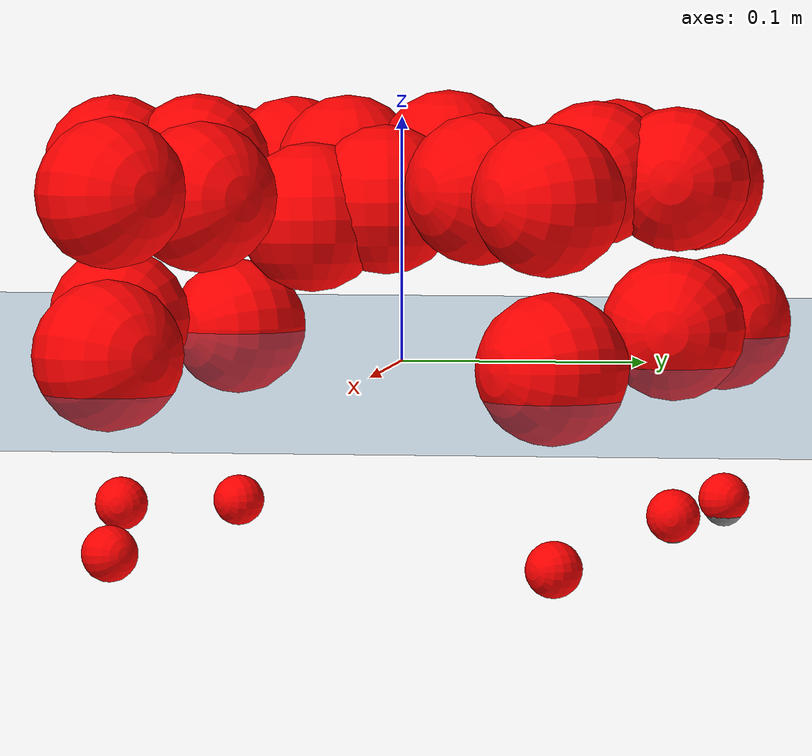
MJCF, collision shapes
<mujoco model="Golem">
  <compiler angle="radian" assetdir="assets" balanceinertia="true" inertiafromgeom="false"/>

  <option timestep="0.005" density="1.2" viscosity="2e-05"/>

  <size nkey="1"/>

  <visual>
    <quality shadowsize="8192"/>
    <map shadowclip="0.5"/>
  </visual>

  <default>
    <default class="/">
      <joint armature="0.01" damping="0.01" frictionloss="0.01"/>
      <geom contype="0" conaffinity="0" group="1" solref="-1000 -80"/>
      <site size="0.01 0.005 0.005" group="5"/>
      <general forcelimited="true" biastype="affine" gainprm="25" biasprm="0 -25 -0.5"/>
      <default class="visual">
        <geom type="mesh" group="2"/>
      </default>
      <default class="collision">
        <geom group="3"/>
      </default>
      <default class="foot">
        <geom size="0.01 0 0" condim="6" group="4" priority="1" solimp="0.015 1 0.01"/>
      </default>
      <default class="reward_collision_sphere">
        <geom group="5" rgba="1 0 0 1"/>
      </default>
    </default>
  </default>

  <asset>
    <texture type="skybox" colorspace="auto" name="//unnamed_texture_0" builtin="gradient" rgb1="0.95 0.95 0.95" rgb2="0.95 0.95 0.95" width="100" height="600"/>
    <texture type="2d" colorspace="auto" name="texplane" builtin="checker" rgb1="0.345 0.575 0.748" rgb2="0.345 0.575 0.748" markrgb="1 1 1" width="512" height="512"/>
    <material name="MatPlane" class="/" texture="texplane" texuniform="true" texrepeat="2 2" specular="0.9"/>
    <mesh name="body" class="/" file="body.stl" scale="0.001 0.001 0.001"/>
    <mesh name="coxa" class="/" file="coxa.stl" scale="0.001 0.001 0.001"/>
    <mesh name="femur" class="/" file="femur.stl" scale="0.001 0.001 0.001"/>
    <mesh name="tibia" class="/" file="tibia.stl" scale="0.001 0.001 0.001"/>
    <mesh name="tarsus" class="/" file="tarsus.stl" scale="0.001 0.001 0.001"/>
  </asset>

  <worldbody>
    <geom name="floor" class="/" size="100 100 0.125" type="plane" group="0" material="MatPlane"/>
    <light name="toplight_shadow" class="/" pos="0 0 5" dir="0.0990148 0.0990148 -0.990148" type="directional" ambient="0.04 0.04 0.04" diffuse="0.55 0.55 0.55" specular="0.12 0.12 0.12"/>
    <light name="toplight_fill" class="/" pos="0 0 5" dir="0.0990148 0.0990148 -0.990148" type="directional" castshadow="false" ambient="0.04 0.04 0.04" diffuse="0.3 0.3 0.3" specular="0.08 0.08 0.08"/>
    <body name="trunk" pos="-0.000384986 0.000454457 0.0013964" quat="0.999992 0.00330038 0.00232652 -0.000666711">
      <inertial pos="0.00112461 -0.00202037 -0.00467884" quat="0.999998 0.00113798 0.000961944 0.00151793" mass="1.34541" diaginertia="0.00186785 8.12851e-05 0.0180191"/>
      <joint name="//unnamed_joint_0" type="free"/>
      <geom name="//unnamed_geom_1" class="/" pos="0 0 0.0718574" quat="1 0 0 0" type="mesh" rgba="0.9 0.9 0.9 1" mesh="body"/>
      <site name="imu" class="/" pos="0.0560391 0.0112535 0.114774" size="0.00738247"/>
      <camera name="track" class="/" pos="0 -0.758217 0" quat="0.707107 0.707107 0 0" mode="trackcom"/>
      <camera name="ego_camera" class="/" pos="0.0926719 0 0.112277" quat="-0.5 -0.5 0.5 0.5"/>
      <body name="coxa_RR" pos="-0.122146 -0.0392995 0.0655133" quat="0.385153 -0.00269763 -0.00127315 -0.922848">
        <inertial pos="0.000893943 -0.00156439 -0.00445803" quat="0.999884 0.0064328 -0.0137529 0.00124822" mass="0.0740142" diaginertia="0.00173986 7.4688e-05 0.0164214"/>
        <joint name="coxa_joint_RR" class="/" pos="0 0 0" axis="-0.0111824 0.00688154 -0.999914" range="-3.04639 3.27022" armature="0.0071896" damping="0.00498405" frictionloss="0.00650163"/>
        <geom name="//unnamed_geom_2" class="/" type="mesh" rgba="0.2 0.2 0.2 1" mesh="coxa"/>
        <geom name="//unnamed_geom_3" class="reward_collision_sphere" size="0.0295299" pos="-0.0213858 0 0"/>
        <body name="femur_RR" pos="0.0394287 -0.000641527 0.00629087" quat="0.499256 -0.500437 0.500051 0.500255">
          <inertial pos="0.000246387 -0.000542424 -0.0013622" quat="0.999941 -0.00381913 -1.41312e-05 0.0101935" mass="0.0821546" diaginertia="0.00180886 7.6396e-05 0.01763"/>
          <joint name="femur_joint_RR" class="/" pos="0 0 0" axis="0.00336485 -0.00470562 -0.999983" stiffness="0.00122662" range="-3.26913 3.17266" armature="0.0095844" damping="0.0144956" frictionloss="0.00712081"/>
          <geom name="//unnamed_geom_4" class="/" type="mesh" rgba="0.9 0.9 0.9 1" mesh="femur"/>
          <geom name="//unnamed_geom_5" class="reward_collision_sphere" size="0.0295299"/>
          <body name="tibia_RR" pos="0.00497395 -0.0488339 -0.00200145" quat="0.00110665 0.999998 7.0078e-06 0.00162446">
            <inertial pos="-0.00495302 -0.00199763 -0.000430246" quat="0.999939 -0.00484584 -0.00767088 0.0062863" mass="0.0758244" diaginertia="0.00183711 7.89326e-05 0.0191355"/>
            <joint name="tibia_joint_RR" class="/" pos="0 0 0" axis="-0.0338944 -0.0052684 0.999412" range="-3.27752 3.17449" armature="0.00902319" damping="0.025314" frictionloss="0.00661311"/>
            <geom name="//unnamed_geom_6" class="/" type="mesh" rgba="0.2 0.2 0.2 1" mesh="tibia"/>
            <geom name="//unnamed_geom_7" class="reward_collision_sphere" size="0.0295299"/>
            <body name="tarsus_RR" pos="0.0678 -0.00115361 0.00302182" quat="1 1.08101e-05 -1.37754e-05 2.21694e-05">
              <inertial pos="0.046493 0.000104774 0.0024354" quat="0.503698 0.494582 0.503394 0.498268" mass="0.075836" diaginertia="0.00176721 7.86036e-05 0.0168528"/>
              <joint name="tarsus_joint_RR" class="/" pos="0 0 0" axis="0.0250954 0.00826456 0.999651" range="-3.11755 3.09652" armature="0.00678079" damping="0" frictionloss="0.00808682"/>
              <geom name="//unnamed_geom_8" class="/" type="mesh" rgba="0.9 0.9 0.9 1" mesh="tarsus"/>
              <geom name="foot_1" class="foot" size="0.0074518" pos="0.0798404 0 0" quat="0 -0.707107 0 0.707107"/>
              <geom name="//unnamed_geom_10" class="reward_collision_sphere" size="0.0295299"/>
              <geom name="//unnamed_geom_11" class="reward_collision_sphere" size="0.0110737" pos="0.0766325 0 0"/>
              <site name="foot_1" class="foot" pos="0.0798404 0 0" quat="0 -0.707107 0 0.707107" size="0.00738247"/>
            </body>
          </body>
        </body>
      </body>
      <body name="coxa_RM" pos="-0.00230281 -0.0437558 0.0780473" quat="0.709069 -0.000991954 0.00131307 -0.705137">
        <inertial pos="-0.000954025 0.0058093 0.000213934" quat="0.999939 -0.00459811 0.00780969 0.00629997" mass="0.085205" diaginertia="0.00197775 7.54606e-05 0.0172962"/>
        <joint name="coxa_joint_RM" class="/" pos="0 0 0" axis="-0.0240237 0.0160342 -0.999583" range="-3.13405 3.03714" armature="0.00474911" damping="0.0314243" frictionloss="0.00875721"/>
        <geom name="//unnamed_geom_12" class="/" type="mesh" rgba="0.2 0.2 0.2 1" mesh="coxa"/>
        <geom name="//unnamed_geom_13" class="reward_collision_sphere" size="0.0295299" pos="-0.0213858 0 0"/>
        <body name="femur_RM" pos="0.0411315 -0.00357132 0.000538748" quat="0.499894 -0.499838 0.49999 0.500278">
          <inertial pos="-0.00286892 0.000396795 0.00165065" quat="0.999975 0.0037105 0.0033855 0.00501346" mass="0.0756146" diaginertia="0.00190579 7.4823e-05 0.0170683"/>
          <joint name="femur_joint_RM" class="/" pos="0 0 0" axis="-0.00105074 -0.00137755 -0.999998" range="-3.11202 3.10564" armature="0.00675121" damping="0" frictionloss="0.00616796"/>
          <geom name="//unnamed_geom_14" class="/" type="mesh" rgba="0.9 0.9 0.9 1" mesh="femur"/>
          <geom name="//unnamed_geom_15" class="reward_collision_sphere" size="0.0295299"/>
          <body name="tibia_RM" pos="0.000347501 -0.0357502 -0.00262449" quat="-0.000822252 0.999999 0.000717011 -0.000440771">
            <inertial pos="-0.00013396 -0.00194411 0.0059912" quat="0.999628 0.00430492 -0.0176098 -0.0203608" mass="0.0798959" diaginertia="0.00172656 8.1828e-05 0.0170005"/>
            <joint name="tibia_joint_RM" class="/" pos="0 0 0" axis="0.00258995 0.00321513 0.999991" range="-3.10249 3.15016" armature="0.0053007" damping="0" frictionloss="0.00452486"/>
            <geom name="//unnamed_geom_16" class="/" type="mesh" rgba="0.2 0.2 0.2 1" mesh="tibia"/>
            <geom name="//unnamed_geom_17" class="reward_collision_sphere" size="0.0295299"/>
            <body name="tarsus_RM" pos="0.0635515 -0.000443969 0.00354587" quat="1 0.000208446 -0.000189224 0.000168756">
              <inertial pos="0.0395473 -0.000133222 -0.00132673" quat="0.492248 0.512885 0.501914 0.492669" mass="0.082052" diaginertia="0.0018079 7.75768e-05 0.0184813"/>
              <joint name="tarsus_joint_RM" class="/" pos="0 0 0" axis="-0.00110912 0.00187511 0.999998" range="-3.27844 3.11121" armature="0.00433635" damping="0" frictionloss="0.00810766"/>
              <geom name="//unnamed_geom_18" class="/" type="mesh" rgba="0.9 0.9 0.9 1" mesh="tarsus"/>
              <geom name="foot_2" class="foot" size="0.0055589" pos="0.0798404 0 0" quat="0 -0.707107 0 0.707107"/>
              <geom name="//unnamed_geom_20" class="reward_collision_sphere" size="0.0295299"/>
              <geom name="//unnamed_geom_21" class="reward_collision_sphere" size="0.0110737" pos="0.0766325 0 0"/>
              <site name="foot_2" class="foot" pos="0.0798404 0 0" quat="0 -0.707107 0 0.707107" size="0.00738247"/>
            </body>
          </body>
        </body>
      </body>
      <body name="coxa_RF" pos="0.132628 -0.0354341 0.0641048" quat="0.923689 -0.000143038 -0.000396225 -0.383143">
        <inertial pos="0.00413511 0.00838514 -0.00280345" quat="0.999826 -0.0175208 0.000446338 0.00638634" mass="0.0794766" diaginertia="0.001754 7.98689e-05 0.0177642"/>
        <joint name="coxa_joint_RF" class="/" pos="0 0 0" axis="0.000904431 0.000717857 -0.999999" range="-3.12692 3.00662" armature="0.00826043" damping="0.0137992" frictionloss="0.00656264"/>
        <geom name="//unnamed_geom_22" class="/" type="mesh" rgba="0.2 0.2 0.2 1" mesh="coxa"/>
        <geom name="//unnamed_geom_23" class="reward_collision_sphere" size="0.0295299" pos="-0.0213858 0 0"/>
        <body name="femur_RF" pos="0.0340056 0.00245584 0.00997912" quat="0.500262 -0.499292 0.498095 0.502341">
          <inertial pos="0.00104112 0.00385462 -0.00648728" quat="0.99939 -0.0241596 -0.00595299 0.0245148" mass="0.0784914" diaginertia="0.00188894 8.4576e-05 0.0173332"/>
          <joint name="femur_joint_RF" class="/" pos="0 0 0" axis="-0.001023 0.000409719 -0.999999" stiffness="0.00612817" range="-3.20843 3.14235" armature="0.00779138" damping="0.013004" frictionloss="0.00973132"/>
          <geom name="//unnamed_geom_24" class="/" type="mesh" rgba="0.9 0.9 0.9 1" mesh="femur"/>
          <geom name="//unnamed_geom_25" class="reward_collision_sphere" size="0.0295299"/>
          <body name="tibia_RF" pos="-0.00308378 -0.0417749 -0.00149229" quat="0.00165128 0.999998 -0.000901144 0.000479254">
            <inertial pos="-0.00148898 -0.00182965 0.000146816" quat="0.999865 0.00891261 0.0137723 0.00120897" mass="0.0791512" diaginertia="0.00180695 7.80727e-05 0.0172583"/>
            <joint name="tibia_joint_RF" class="/" pos="0 0 0" axis="0.0288395 0.00332307 0.999579" range="-3.1722 3.12066" armature="0.00732986" damping="0.0211732" frictionloss="0.00745196"/>
            <geom name="//unnamed_geom_26" class="/" type="mesh" rgba="0.2 0.2 0.2 1" mesh="tibia"/>
            <geom name="//unnamed_geom_27" class="reward_collision_sphere" size="0.0295299"/>
            <body name="tarsus_RF" pos="0.0628449 0.00109478 0.00189714" quat="0.999995 -0.00232195 0.000582103 0.00203382">
              <inertial pos="0.0492598 0.00095878 -0.00802999" quat="0.49829 0.484012 0.508907 0.508382" mass="0.089491" diaginertia="0.00183555 8.26601e-05 0.0198473"/>
              <joint name="tarsus_joint_RF" class="/" pos="0 0 0" axis="-0.0327237 0.0123035 0.999389" range="-3.28017 3.16458" armature="0.00739389" damping="0" frictionloss="0.00617909"/>
              <geom name="//unnamed_geom_28" class="/" type="mesh" rgba="0.9 0.9 0.9 1" mesh="tarsus"/>
              <geom name="foot_3" class="foot" size="0.00758546" pos="0.0798404 0 0" quat="0 -0.707107 0 0.707107"/>
              <geom name="//unnamed_geom_30" class="reward_collision_sphere" size="0.0295299"/>
              <geom name="//unnamed_geom_31" class="reward_collision_sphere" size="0.0110737" pos="0.0766325 0 0"/>
              <site name="foot_3" class="foot" pos="0.0798404 0 0" quat="0 -0.707107 0 0.707107" size="0.00738247"/>
            </body>
          </body>
        </body>
      </body>
      <body name="coxa_LR" pos="-0.127585 0.0417705 0.0646094" quat="0.381168 -0.00220131 -0.00180833 0.924501">
        <inertial pos="-0.00601487 0.00138327 0.00266241" quat="0.999759 -0.0134508 -0.0154118 0.00796886" mass="0.0796526" diaginertia="0.00185721 7.7557e-05 0.0176707"/>
        <joint name="coxa_joint_LR" class="/" pos="0 0 0" axis="-0.00870881 -0.0335111 -0.9994" range="-3.17381 3.1838" armature="0.00745513" damping="0.0422021" frictionloss="0.00698318"/>
        <geom name="//unnamed_geom_32" class="/" type="mesh" rgba="0.2 0.2 0.2 1" mesh="coxa"/>
        <geom name="//unnamed_geom_33" class="reward_collision_sphere" size="0.0295299" pos="-0.0213858 0 0"/>
        <body name="femur_LR" pos="0.0455494 0.00164734 0.00560892" quat="0.498354 -0.50216 0.498822 0.500654">
          <inertial pos="0.000218374 -0.00210236 0.00254758" quat="0.999983 0.000284655 -0.00517328 0.00250282" mass="0.0761687" diaginertia="0.00178182 7.67556e-05 0.0171109"/>
          <joint name="femur_joint_LR" class="/" pos="0 0 0" axis="0.00107496 -0.00105139 0.999999" stiffness="0.00846957" range="-3.16402 2.97302" armature="0.00638981" damping="0.0102401" frictionloss="0.0045077"/>
          <geom name="//unnamed_geom_34" class="/" type="mesh" rgba="0.9 0.9 0.9 1" mesh="femur"/>
          <geom name="//unnamed_geom_35" class="reward_collision_sphere" size="0.0295299"/>
          <body name="tibia_LR" pos="0.00762528 -0.0382206 -0.00660032" quat="0.000665737 0.999999 0.00115632 8.20115e-05">
            <inertial pos="0.00113718 -0.00190449 0.0022984" quat="0.999983 0.00384323 0.00374247 -0.00210408" mass="0.080237" diaginertia="0.00179441 7.29539e-05 0.0174947"/>
            <joint name="tibia_joint_LR" class="/" pos="0 0 0" axis="-0.00013659 -0.000549582 -1" range="-3.12096 3.25556" armature="0.0100724" damping="0" frictionloss="0.00798356"/>
            <geom name="//unnamed_geom_36" class="/" type="mesh" rgba="0.2 0.2 0.2 1" mesh="tibia"/>
            <geom name="//unnamed_geom_37" class="reward_collision_sphere" size="0.0295299"/>
            <body name="tarsus_LR" pos="0.0605817 0.00691825 0.00955595" quat="1 0.000245268 0.000222817 -0.000220579">
              <inertial pos="0.0455294 0.00118389 -0.00148655" quat="0.496024 0.502773 0.50576 0.495366" mass="0.0820783" diaginertia="0.00188879 8.01019e-05 0.0185402"/>
              <joint name="tarsus_joint_LR" class="/" pos="0 0 0" axis="0.00526423 -0.00211042 -0.999984" stiffness="0.00981098" range="-3.27067 3.15001" armature="0.00733421" damping="0.0482065" frictionloss="0.0081775"/>
              <geom name="//unnamed_geom_38" class="/" type="mesh" rgba="0.9 0.9 0.9 1" mesh="tarsus"/>
              <geom name="foot_4" class="foot" size="0.00895459" pos="0.0798404 0 0" quat="0.707107 0 -0.707107 0"/>
              <geom name="//unnamed_geom_40" class="reward_collision_sphere" size="0.0295299"/>
              <geom name="//unnamed_geom_41" class="reward_collision_sphere" size="0.0110737" pos="0.0766325 0 0"/>
              <site name="foot_4" class="foot" pos="0.0798404 0 0" quat="0.707107 0 -0.707107 0" size="0.00738247"/>
            </body>
          </body>
        </body>
      </body>
      <body name="coxa_LM" pos="0.00476656 0.0414262 0.0800784" quat="0.708191 -0.00295863 0.00248253 0.70601">
        <inertial pos="0.000355884 7.99531e-05 -0.00250132" quat="0.999936 -0.00091505 0.00508057 0.0100602" mass="0.0717463" diaginertia="0.00148992 7.00082e-05 0.0158088"/>
        <joint name="coxa_joint_LM" class="/" pos="0 0 0" axis="0.000120194 -0.00265288 -0.999996" range="-3.0403 3.10335" armature="0.00878841" damping="0" frictionloss="0.00570445"/>
        <geom name="//unnamed_geom_42" class="/" type="mesh" rgba="0.2 0.2 0.2 1" mesh="coxa"/>
        <geom name="//unnamed_geom_43" class="reward_collision_sphere" size="0.0295299" pos="-0.0213858 0 0"/>
        <body name="femur_LM" pos="0.0393989 -0.00310047 -0.00396568" quat="0.500094 -0.499881 0.499957 0.500068">
          <inertial pos="-0.000191183 0.00375221 0.000489351" quat="0.999931 0.00400057 0.0057383 0.00945715" mass="0.0921144" diaginertia="0.0019903 8.72615e-05 0.0199379"/>
          <joint name="femur_joint_LM" class="/" pos="0 0 0" axis="-0.00294482 0.00323983 0.99999" range="-3.11131 3.09426" armature="0.00795178" damping="0" frictionloss="0.00635264"/>
          <geom name="//unnamed_geom_44" class="/" type="mesh" rgba="0.9 0.9 0.9 1" mesh="femur"/>
          <geom name="//unnamed_geom_45" class="reward_collision_sphere" size="0.0295299"/>
          <body name="tibia_LM" pos="0.00235079 -0.0330576 0.00295916" quat="0.000313901 0.999999 -0.000661412 0.000722376">
            <inertial pos="0.0071328 -0.00847521 0.00209556" quat="1 -1.32878e-05 0.000198462 0.000244295" mass="0.077616" diaginertia="0.00199904 8.15141e-05 0.0187561"/>
            <joint name="tibia_joint_LM" class="/" pos="0 0 0" axis="1.16155e-05 -4.70696e-05 -1" stiffness="0.00726464" range="-3.21773 3.14402" armature="0.0071556" damping="0" frictionloss="0.00812188"/>
            <geom name="//unnamed_geom_46" class="/" type="mesh" rgba="0.2 0.2 0.2 1" mesh="tibia"/>
            <geom name="//unnamed_geom_47" class="reward_collision_sphere" size="0.0295299"/>
            <body name="tarsus_LM" pos="0.0608368 -0.00156497 0.00193665" quat="0.999999 -0.000150112 0.000886501 0.000711233">
              <inertial pos="0.0432356 -0.000627556 0.000190677" quat="0.50596 0.49871 0.503879 0.491323" mass="0.0853778" diaginertia="0.00194127 8.06539e-05 0.0171862"/>
              <joint name="tarsus_joint_LM" class="/" pos="0 0 0" axis="-0.0205088 -0.0122183 -0.999715" range="-3.12085 3.21402" armature="0.00734141" damping="0" frictionloss="0.00917262"/>
              <geom name="//unnamed_geom_48" class="/" type="mesh" rgba="0.9 0.9 0.9 1" mesh="tarsus"/>
              <geom name="foot_5" class="foot" size="0.00803171" pos="0.0798404 0 0" quat="0.707107 0 -0.707107 0"/>
              <geom name="//unnamed_geom_50" class="reward_collision_sphere" size="0.0295299"/>
              <geom name="//unnamed_geom_51" class="reward_collision_sphere" size="0.0110737" pos="0.0766325 0 0"/>
              <site name="foot_5" class="foot" pos="0.0798404 0 0" quat="0.707107 0 -0.707107 0" size="0.00738247"/>
            </body>
          </body>
        </body>
      </body>
      <body name="coxa_LF" pos="0.128772 0.023878 0.0707971" quat="0.923933 5.54836e-05 -0.000663405 0.382554">
        <inertial pos="-0.00261021 0.00370698 -0.00124622" quat="0.999976 -0.00488451 0.00158547 -0.00456936" mass="0.0863004" diaginertia="0.00195743 8.81181e-05 0.0189045"/>
        <joint name="coxa_joint_LF" class="/" pos="0 0 0" axis="-0.00522938 0.00246162 -0.999983" stiffness="0.0105542" range="-3.07265 3.13465" armature="0.00732887" damping="0.014866" frictionloss="0.00681511"/>
        <geom name="//unnamed_geom_52" class="/" type="mesh" rgba="0.2 0.2 0.2 1" mesh="coxa"/>
        <geom name="//unnamed_geom_53" class="reward_collision_sphere" size="0.0295299" pos="-0.0213858 0 0"/>
        <body name="femur_LF" pos="0.0461383 -0.00563218 0.00650243" quat="0.50018 -0.500743 0.500151 0.498924">
          <inertial pos="-0.00144404 0.000509433 -0.00260892" quat="0.999208 -0.0159681 0.0106326 0.0348672" mass="0.0802608" diaginertia="0.00181045 8.39812e-05 0.0182667"/>
          <joint name="femur_joint_LF" class="/" pos="0 0 0" axis="-0.00918829 -0.00224965 0.999955" range="-3.10036 3.15752" armature="0.00656621" damping="0" frictionloss="0.0104698"/>
          <geom name="//unnamed_geom_54" class="/" type="mesh" rgba="0.9 0.9 0.9 1" mesh="femur"/>
          <geom name="//unnamed_geom_55" class="reward_collision_sphere" size="0.0295299"/>
          <body name="tibia_LF" pos="0.00279251 -0.0437443 -0.00163115" quat="0.000361353 1 0.000166945 4.42979e-05">
            <inertial pos="0.000586517 -0.000584915 0.00216732" quat="0.999976 -0.00618851 -0.00251356 -0.00170392" mass="0.0776131" diaginertia="0.00182476 7.97989e-05 0.0182361"/>
            <joint name="tibia_joint_LF" class="/" pos="0 0 0" axis="-0.000300655 -0.00863112 -0.999963" range="-2.98682 3.18044" armature="0.00670239" damping="0" frictionloss="0.00854418"/>
            <geom name="//unnamed_geom_56" class="/" type="mesh" rgba="0.2 0.2 0.2 1" mesh="tibia"/>
            <geom name="//unnamed_geom_57" class="reward_collision_sphere" size="0.0295299"/>
            <body name="tarsus_LF" pos="0.0645313 -5.05438e-05 -0.00137616" quat="1 0.000127587 0.000483001 0.000713858">
              <inertial pos="0.0436182 -0.000136761 -0.00738811" quat="0.499364 0.501295 0.500079 0.49926" mass="0.0787295" diaginertia="0.0018598 7.87152e-05 0.0183756"/>
              <joint name="tarsus_joint_LF" class="/" pos="0 0 0" axis="0.0202978 0.00582135 -0.999777" stiffness="0.00953254" range="-3.1314 3.093" armature="0.0072576" damping="0.0478353" frictionloss="0.0081999"/>
              <geom name="//unnamed_geom_58" class="/" type="mesh" rgba="0.9 0.9 0.9 1" mesh="tarsus"/>
              <geom name="foot_6" class="foot" size="0.00707396" pos="0.0798404 0 0" quat="0.707107 0 -0.707107 0"/>
              <geom name="//unnamed_geom_60" class="reward_collision_sphere" size="0.0295299"/>
              <geom name="//unnamed_geom_61" class="reward_collision_sphere" size="0.0110737" pos="0.0766325 0 0"/>
              <site name="foot_6" class="foot" pos="0.0798404 0 0" quat="0.707107 0 -0.707107 0" size="0.00738247"/>
            </body>
          </body>
        </body>
      </body>
    </body>
  </worldbody>

  <contact>
    <pair class="/" geom1="floor" geom2="foot_1" name="//unnamed_contact_0"/>
    <pair class="/" geom1="floor" geom2="foot_2" name="//unnamed_contact_1"/>
    <pair class="/" geom1="floor" geom2="foot_3" name="//unnamed_contact_2"/>
    <pair class="/" geom1="floor" geom2="foot_4" name="//unnamed_contact_3"/>
    <pair class="/" geom1="floor" geom2="foot_5" name="//unnamed_contact_4"/>
    <pair class="/" geom1="floor" geom2="foot_6" name="//unnamed_contact_5"/>
  </contact>

  <actuator>
    <general name="coxa_joint_RR" class="/" joint="coxa_joint_RR" forcerange="-4.63148 4.63148" gainprm="21.9706" biasprm="0 -21.9706 -0.436668"/>
    <general name="femur_joint_RR" class="/" joint="femur_joint_RR" forcerange="-5.27336 5.27336" gainprm="21.9706" biasprm="0 -21.9706 -0.436668"/>
    <general name="tibia_joint_RR" class="/" joint="tibia_joint_RR" forcerange="-5.10927 5.10927" gainprm="21.9706" biasprm="0 -21.9706 -0.436668"/>
    <general name="tarsus_joint_RR" class="/" joint="tarsus_joint_RR" forcerange="-5.76518 5.76518" gainprm="21.9706" biasprm="0 -21.9706 -0.436668"/>
    <general name="coxa_joint_RM" class="/" joint="coxa_joint_RM" forcerange="-4.59927 4.59927" gainprm="21.9706" biasprm="0 -21.9706 -0.436668"/>
    <general name="femur_joint_RM" class="/" joint="femur_joint_RM" forcerange="-4.35615 4.35615" gainprm="21.9706" biasprm="0 -21.9706 -0.436668"/>
    <general name="tibia_joint_RM" class="/" joint="tibia_joint_RM" forcerange="-5.54671 5.54671" gainprm="21.9706" biasprm="0 -21.9706 -0.436668"/>
    <general name="tarsus_joint_RM" class="/" joint="tarsus_joint_RM" forcerange="-3.83886 3.83886" gainprm="21.9706" biasprm="0 -21.9706 -0.436668"/>
    <general name="coxa_joint_RF" class="/" joint="coxa_joint_RF" forcerange="-4.1223 4.1223" gainprm="21.9706" biasprm="0 -21.9706 -0.436668"/>
    <general name="femur_joint_RF" class="/" joint="femur_joint_RF" forcerange="-6.67044 6.67044" gainprm="21.9706" biasprm="0 -21.9706 -0.436668"/>
    <general name="tibia_joint_RF" class="/" joint="tibia_joint_RF" forcerange="-5.47226 5.47226" gainprm="21.9706" biasprm="0 -21.9706 -0.436668"/>
    <general name="tarsus_joint_RF" class="/" joint="tarsus_joint_RF" forcerange="-5.80055 5.80055" gainprm="21.9706" biasprm="0 -21.9706 -0.436668"/>
    <general name="coxa_joint_LR" class="/" joint="coxa_joint_LR" forcerange="-5.1336 5.1336" gainprm="21.9706" biasprm="0 -21.9706 -0.436668"/>
    <general name="femur_joint_LR" class="/" joint="femur_joint_LR" forcerange="-6.07538 6.07538" gainprm="21.9706" biasprm="0 -21.9706 -0.436668"/>
    <general name="tibia_joint_LR" class="/" joint="tibia_joint_LR" forcerange="-5.50858 5.50858" gainprm="21.9706" biasprm="0 -21.9706 -0.436668"/>
    <general name="tarsus_joint_LR" class="/" joint="tarsus_joint_LR" forcerange="-4.94033 4.94033" gainprm="21.9706" biasprm="0 -21.9706 -0.436668"/>
    <general name="coxa_joint_LM" class="/" joint="coxa_joint_LM" forcerange="-5.39955 5.39955" gainprm="21.9706" biasprm="0 -21.9706 -0.436668"/>
    <general name="femur_joint_LM" class="/" joint="femur_joint_LM" forcerange="-5.34007 5.34007" gainprm="21.9706" biasprm="0 -21.9706 -0.436668"/>
    <general name="tibia_joint_LM" class="/" joint="tibia_joint_LM" forcerange="-6.92177 6.92177" gainprm="21.9706" biasprm="0 -21.9706 -0.436668"/>
    <general name="tarsus_joint_LM" class="/" joint="tarsus_joint_LM" forcerange="-5.32311 5.32311" gainprm="21.9706" biasprm="0 -21.9706 -0.436668"/>
    <general name="coxa_joint_LF" class="/" joint="coxa_joint_LF" forcerange="-4.33501 4.33501" gainprm="21.9706" biasprm="0 -21.9706 -0.436668"/>
    <general name="femur_joint_LF" class="/" joint="femur_joint_LF" forcerange="-4.26438 4.26438" gainprm="21.9706" biasprm="0 -21.9706 -0.436668"/>
    <general name="tibia_joint_LF" class="/" joint="tibia_joint_LF" forcerange="-5.18105 5.18105" gainprm="21.9706" biasprm="0 -21.9706 -0.436668"/>
    <general name="tarsus_joint_LF" class="/" joint="tarsus_joint_LF" forcerange="-5.17216 5.17216" gainprm="21.9706" biasprm="0 -21.9706 -0.436668"/>
  </actuator>

  <sensor>
    <gyro site="imu" name="imu_angular_velocity"/>
    <velocimeter site="imu" name="imu_linear_velocity"/>
    <framelinvel objtype="site" objname="foot_1" name="foot_1_global_linear_velocity"/>
    <framelinvel objtype="site" objname="foot_2" name="foot_2_global_linear_velocity"/>
    <framelinvel objtype="site" objname="foot_3" name="foot_3_global_linear_velocity"/>
    <framelinvel objtype="site" objname="foot_4" name="foot_4_global_linear_velocity"/>
    <framelinvel objtype="site" objname="foot_5" name="foot_5_global_linear_velocity"/>
    <framelinvel objtype="site" objname="foot_6" name="foot_6_global_linear_velocity"/>
  </sensor>

  <keyframe>
    <key name="home" qpos="0 0 0.1457 1 0 0 0 0 0 0 0 0 0 0 0 0 0 0 0 0 0 0 0 0 0 0 0 0 0 0 0"/>
  </keyframe>
</mujoco>
